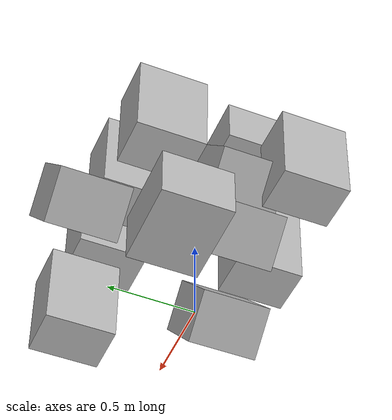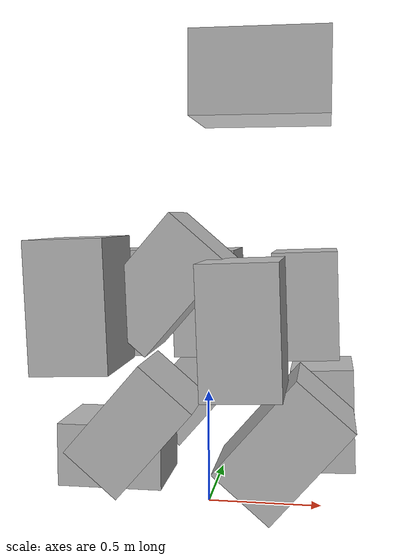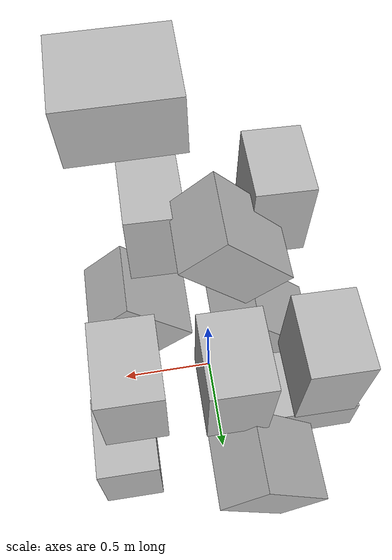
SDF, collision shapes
<?xml version='1.0'?>
<sdf version='1.7'>
  <model name='boxes'>
    <model name='cardboard_box'>
      <pose>-0.491644 0.289158 0.15 0 -0 0</pose>
      <link name='link'>
        <inertial>
          <mass>2</mass>
          <inertia>
            <ixx>0.0416667</ixx>
            <ixy>0</ixy>
            <ixz>0</ixz>
            <iyy>0.0566667</iyy>
            <iyz>0</iyz>
            <izz>0.0683333</izz>
          </inertia>
        </inertial>
        <collision name='collision'>
          <geometry>
            <box>
              <size>0.5 0.4 0.3</size>
            </box>
          </geometry>
          <surface>
            <friction>
              <ode>
                <mu>1</mu>
                <mu2>1</mu2>
              </ode>
            </friction>
            <contact>
              <ode>
                <kp>1e+07</kp>
                <kd>1</kd>
                <min_depth>0.001</min_depth>
                <max_vel>0.1</max_vel>
              </ode>
            </contact>
          </surface>
        </collision>
        <visual name='visual'>
          <pose>0 0 -0.15 0 -0 0</pose>
          <geometry>
            <mesh>
              <uri>model://cardboard_box/meshes/cardboard_box.dae</uri>
              <scale>1.25932 1.00745 0.755591</scale>
            </mesh>
          </geometry>
        </visual>
      </link>
    </model>
    <model name='cardboard_box_clone'>
      <pose>0.503217 0.516816 0.293646 3.14159 -1.53575 3.14159</pose>
      <link name='link'>
        <inertial>
          <mass>2</mass>
          <inertia>
            <ixx>0.0416667</ixx>
            <ixy>0</ixy>
            <ixz>0</ixz>
            <iyy>0.0566667</iyy>
            <iyz>0</iyz>
            <izz>0.0683333</izz>
          </inertia>
        </inertial>
        <collision name='collision'>
          <geometry>
            <box>
              <size>0.5 0.4 0.3</size>
            </box>
          </geometry>
          <surface>
            <friction>
              <ode>
                <mu>1</mu>
                <mu2>1</mu2>
              </ode>
            </friction>
            <contact>
              <ode>
                <kp>1e+07</kp>
                <kd>1</kd>
                <min_depth>0.001</min_depth>
                <max_vel>0.1</max_vel>
              </ode>
            </contact>
          </surface>
        </collision>
        <visual name='visual'>
          <pose>0 0 -0.15 0 -0 0</pose>
          <geometry>
            <mesh>
              <uri>model://cardboard_box/meshes/cardboard_box.dae</uri>
              <scale>1.25932 1.00745 0.755591</scale>
            </mesh>
          </geometry>
        </visual>
      </link>
    </model>
    <model name='cardboard_box_clone_0'>
      <pose>-0.187598 0.737458 0.371241 0 -0.858752 0</pose>
      <link name='link'>
        <inertial>
          <mass>2</mass>
          <inertia>
            <ixx>0.0416667</ixx>
            <ixy>0</ixy>
            <ixz>0</ixz>
            <iyy>0.0566667</iyy>
            <iyz>0</iyz>
            <izz>0.0683333</izz>
          </inertia>
        </inertial>
        <collision name='collision'>
          <geometry>
            <box>
              <size>0.5 0.4 0.3</size>
            </box>
          </geometry>
          <surface>
            <friction>
              <ode>
                <mu>1</mu>
                <mu2>1</mu2>
              </ode>
            </friction>
            <contact>
              <ode>
                <kp>1e+07</kp>
                <kd>1</kd>
                <min_depth>0.001</min_depth>
                <max_vel>0.1</max_vel>
              </ode>
            </contact>
          </surface>
        </collision>
        <visual name='visual'>
          <pose>0 0 -0.15 0 -0 0</pose>
          <geometry>
            <mesh>
              <uri>model://cardboard_box/meshes/cardboard_box.dae</uri>
              <scale>1.25932 1.00745 0.755591</scale>
            </mesh>
          </geometry>
        </visual>
      </link>
    </model>
    <model name='cardboard_box_clone_0_clone'>
      <pose>-0.306536 -0.085275 0.371241 0 -0.858752 0</pose>
      <link name='link'>
        <inertial>
          <mass>2</mass>
          <inertia>
            <ixx>0.0416667</ixx>
            <ixy>0</ixy>
            <ixz>0</ixz>
            <iyy>0.0566667</iyy>
            <iyz>0</iyz>
            <izz>0.0683333</izz>
          </inertia>
        </inertial>
        <collision name='collision'>
          <geometry>
            <box>
              <size>0.5 0.4 0.3</size>
            </box>
          </geometry>
          <surface>
            <friction>
              <ode>
                <mu>1</mu>
                <mu2>1</mu2>
              </ode>
            </friction>
            <contact>
              <ode>
                <kp>1e+07</kp>
                <kd>1</kd>
                <min_depth>0.001</min_depth>
                <max_vel>0.1</max_vel>
              </ode>
            </contact>
          </surface>
        </collision>
        <visual name='visual'>
          <pose>0 0 -0.15 0 -0 0</pose>
          <geometry>
            <mesh>
              <uri>model://cardboard_box/meshes/cardboard_box.dae</uri>
              <scale>1.25932 1.00745 0.755591</scale>
            </mesh>
          </geometry>
        </visual>
      </link>
    </model>
    <model name='cardboard_box_clone_0_clone_0'>
      <pose>-0.148256 -0.203641 1.0062 0 -0.858752 0</pose>
      <link name='link'>
        <inertial>
          <mass>2</mass>
          <inertia>
            <ixx>0.0416667</ixx>
            <ixy>0</ixy>
            <ixz>0</ixz>
            <iyy>0.0566667</iyy>
            <iyz>0</iyz>
            <izz>0.0683333</izz>
          </inertia>
        </inertial>
        <collision name='collision'>
          <geometry>
            <box>
              <size>0.5 0.4 0.3</size>
            </box>
          </geometry>
          <surface>
            <friction>
              <ode>
                <mu>1</mu>
                <mu2>1</mu2>
              </ode>
            </friction>
            <contact>
              <ode>
                <kp>1e+07</kp>
                <kd>1</kd>
                <min_depth>0.001</min_depth>
                <max_vel>0.1</max_vel>
              </ode>
            </contact>
          </surface>
        </collision>
        <visual name='visual'>
          <pose>0 0 -0.15 0 -0 0</pose>
          <geometry>
            <mesh>
              <uri>model://cardboard_box/meshes/cardboard_box.dae</uri>
              <scale>1.25932 1.00745 0.755591</scale>
            </mesh>
          </geometry>
        </visual>
      </link>
    </model>
    <model name='cardboard_box_clone_0_clone_1'>
      <pose>0.355638 -0.289562 0.371241 0 -0.858752 0</pose>
      <link name='link'>
        <inertial>
          <mass>2</mass>
          <inertia>
            <ixx>0.0416667</ixx>
            <ixy>0</ixy>
            <ixz>0</ixz>
            <iyy>0.0566667</iyy>
            <iyz>0</iyz>
            <izz>0.0683333</izz>
          </inertia>
        </inertial>
        <collision name='collision'>
          <geometry>
            <box>
              <size>0.5 0.4 0.3</size>
            </box>
          </geometry>
          <surface>
            <friction>
              <ode>
                <mu>1</mu>
                <mu2>1</mu2>
              </ode>
            </friction>
            <contact>
              <ode>
                <kp>1e+07</kp>
                <kd>1</kd>
                <min_depth>0.001</min_depth>
                <max_vel>0.1</max_vel>
              </ode>
            </contact>
          </surface>
        </collision>
        <visual name='visual'>
          <pose>0 0 -0.15 0 -0 0</pose>
          <geometry>
            <mesh>
              <uri>model://cardboard_box/meshes/cardboard_box.dae</uri>
              <scale>1.25932 1.00745 0.755591</scale>
            </mesh>
          </geometry>
        </visual>
      </link>
    </model>
    <model name='cardboard_box_clone_1'>
      <pose>0.270936 -0.443428 1.77978 0 -0 0</pose>
      <link name='link'>
        <inertial>
          <mass>2</mass>
          <inertia>
            <ixx>0.0416667</ixx>
            <ixy>0</ixy>
            <ixz>0</ixz>
            <iyy>0.0566667</iyy>
            <iyz>0</iyz>
            <izz>0.0683333</izz>
          </inertia>
        </inertial>
        <collision name='collision'>
          <geometry>
            <box>
              <size>0.5 0.4 0.3</size>
            </box>
          </geometry>
          <surface>
            <friction>
              <ode>
                <mu>1</mu>
                <mu2>1</mu2>
              </ode>
            </friction>
            <contact>
              <ode>
                <kp>1e+07</kp>
                <kd>1</kd>
                <min_depth>0.001</min_depth>
                <max_vel>0.1</max_vel>
              </ode>
            </contact>
          </surface>
        </collision>
        <visual name='visual'>
          <pose>0 0 -0.15 0 -0 0</pose>
          <geometry>
            <mesh>
              <uri>model://cardboard_box/meshes/cardboard_box.dae</uri>
              <scale>1.25932 1.00745 0.755591</scale>
            </mesh>
          </geometry>
        </visual>
      </link>
    </model>
    <model name='cardboard_box_clone_clone'>
      <pose>0.207477 -0.499968 0.864015 3.14159 -1.53575 3.14159</pose>
      <link name='link'>
        <inertial>
          <mass>2</mass>
          <inertia>
            <ixx>0.0416667</ixx>
            <ixy>0</ixy>
            <ixz>0</ixz>
            <iyy>0.0566667</iyy>
            <iyz>0</iyz>
            <izz>0.0683333</izz>
          </inertia>
        </inertial>
        <collision name='collision'>
          <geometry>
            <box>
              <size>0.5 0.4 0.3</size>
            </box>
          </geometry>
          <surface>
            <friction>
              <ode>
                <mu>1</mu>
                <mu2>1</mu2>
              </ode>
            </friction>
            <contact>
              <ode>
                <kp>1e+07</kp>
                <kd>1</kd>
                <min_depth>0.001</min_depth>
                <max_vel>0.1</max_vel>
              </ode>
            </contact>
          </surface>
        </collision>
        <visual name='visual'>
          <pose>0 0 -0.15 0 -0 0</pose>
          <geometry>
            <mesh>
              <uri>model://cardboard_box/meshes/cardboard_box.dae</uri>
              <scale>1.25932 1.00745 0.755591</scale>
            </mesh>
          </geometry>
        </visual>
      </link>
    </model>
    <model name='cardboard_box_clone_clone_0'>
      <pose>-0.422969 -0.499982 0.945083 3.14159 -1.53575 3.14159</pose>
      <link name='link'>
        <inertial>
          <mass>2</mass>
          <inertia>
            <ixx>0.0416667</ixx>
            <ixy>0</ixy>
            <ixz>0</ixz>
            <iyy>0.0566667</iyy>
            <iyz>0</iyz>
            <izz>0.0683333</izz>
          </inertia>
        </inertial>
        <collision name='collision'>
          <geometry>
            <box>
              <size>0.5 0.4 0.3</size>
            </box>
          </geometry>
          <surface>
            <friction>
              <ode>
                <mu>1</mu>
                <mu2>1</mu2>
              </ode>
            </friction>
            <contact>
              <ode>
                <kp>1e+07</kp>
                <kd>1</kd>
                <min_depth>0.001</min_depth>
                <max_vel>0.1</max_vel>
              </ode>
            </contact>
          </surface>
        </collision>
        <visual name='visual'>
          <pose>0 0 -0.15 0 -0 0</pose>
          <geometry>
            <mesh>
              <uri>model://cardboard_box/meshes/cardboard_box.dae</uri>
              <scale>1.25932 1.00745 0.755591</scale>
            </mesh>
          </geometry>
        </visual>
      </link>
    </model>
    <model name='cardboard_box_clone_clone_clone'>
      <pose>-0.058913 0.417894 0.864015 3.14159 -1.53575 3.14159</pose>
      <link name='link'>
        <inertial>
          <mass>2</mass>
          <inertia>
            <ixx>0.0416667</ixx>
            <ixy>0</ixy>
            <ixz>0</ixz>
            <iyy>0.0566667</iyy>
            <iyz>0</iyz>
            <izz>0.0683333</izz>
          </inertia>
        </inertial>
        <collision name='collision'>
          <geometry>
            <box>
              <size>0.5 0.4 0.3</size>
            </box>
          </geometry>
          <surface>
            <friction>
              <ode>
                <mu>1</mu>
                <mu2>1</mu2>
              </ode>
            </friction>
            <contact>
              <ode>
                <kp>1e+07</kp>
                <kd>1</kd>
                <min_depth>0.001</min_depth>
                <max_vel>0.1</max_vel>
              </ode>
            </contact>
          </surface>
        </collision>
        <visual name='visual'>
          <pose>0 0 -0.15 0 -0 0</pose>
          <geometry>
            <mesh>
              <uri>model://cardboard_box/meshes/cardboard_box.dae</uri>
              <scale>1.25932 1.00745 0.755591</scale>
            </mesh>
          </geometry>
        </visual>
      </link>
    </model>
    <model name='cardboard_box_clone_clone_clone_0'>
      <pose>0.417599 0.381366 0.864015 3.14159 -1.53575 3.14159</pose>
      <link name='link'>
        <inertial>
          <mass>2</mass>
          <inertia>
            <ixx>0.0416667</ixx>
            <ixy>0</ixy>
            <ixz>0</ixz>
            <iyy>0.0566667</iyy>
            <iyz>0</iyz>
            <izz>0.0683333</izz>
          </inertia>
        </inertial>
        <collision name='collision'>
          <geometry>
            <box>
              <size>0.5 0.4 0.3</size>
            </box>
          </geometry>
          <surface>
            <friction>
              <ode>
                <mu>1</mu>
                <mu2>1</mu2>
              </ode>
            </friction>
            <contact>
              <ode>
                <kp>1e+07</kp>
                <kd>1</kd>
                <min_depth>0.001</min_depth>
                <max_vel>0.1</max_vel>
              </ode>
            </contact>
          </surface>
        </collision>
        <visual name='visual'>
          <pose>0 0 -0.15 0 -0 0</pose>
          <geometry>
            <mesh>
              <uri>model://cardboard_box/meshes/cardboard_box.dae</uri>
              <scale>1.25932 1.00745 0.755591</scale>
            </mesh>
          </geometry>
        </visual>
      </link>
    </model>
    <model name='cardboard_box_clone_clone_clone_1'>
      <pose>-0.489667 0.393093 0.864015 3.14159 -1.53575 3.14159</pose>
      <link name='link'>
        <inertial>
          <mass>2</mass>
          <inertia>
            <ixx>0.0416667</ixx>
            <ixy>0</ixy>
            <ixz>0</ixz>
            <iyy>0.0566667</iyy>
            <iyz>0</iyz>
            <izz>0.0683333</izz>
          </inertia>
        </inertial>
        <collision name='collision'>
          <geometry>
            <box>
              <size>0.5 0.4 0.3</size>
            </box>
          </geometry>
          <surface>
            <friction>
              <ode>
                <mu>1</mu>
                <mu2>1</mu2>
              </ode>
            </friction>
            <contact>
              <ode>
                <kp>1e+07</kp>
                <kd>1</kd>
                <min_depth>0.001</min_depth>
                <max_vel>0.1</max_vel>
              </ode>
            </contact>
          </surface>
        </collision>
        <visual name='visual'>
          <pose>0 0 -0.15 0 -0 0</pose>
          <geometry>
            <mesh>
              <uri>model://cardboard_box/meshes/cardboard_box.dae</uri>
              <scale>1.25932 1.00745 0.755591</scale>
            </mesh>
          </geometry>
        </visual>
      </link>
    </model>
    <static>0</static>
    <allow_auto_disable>1</allow_auto_disable>
  </model>
</sdf>
